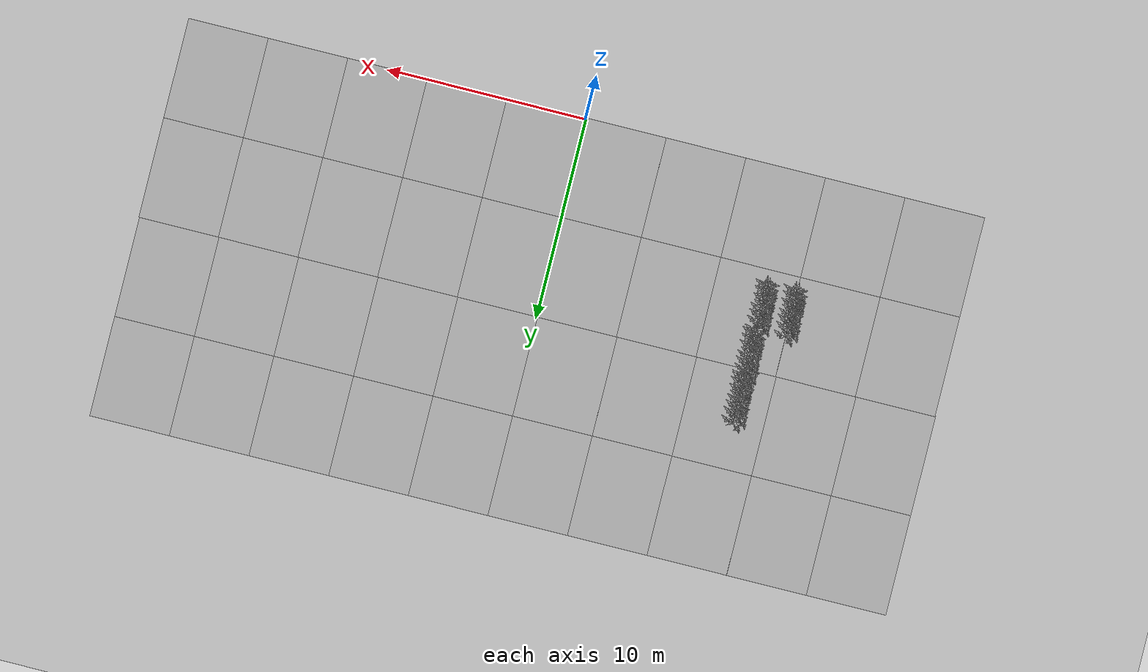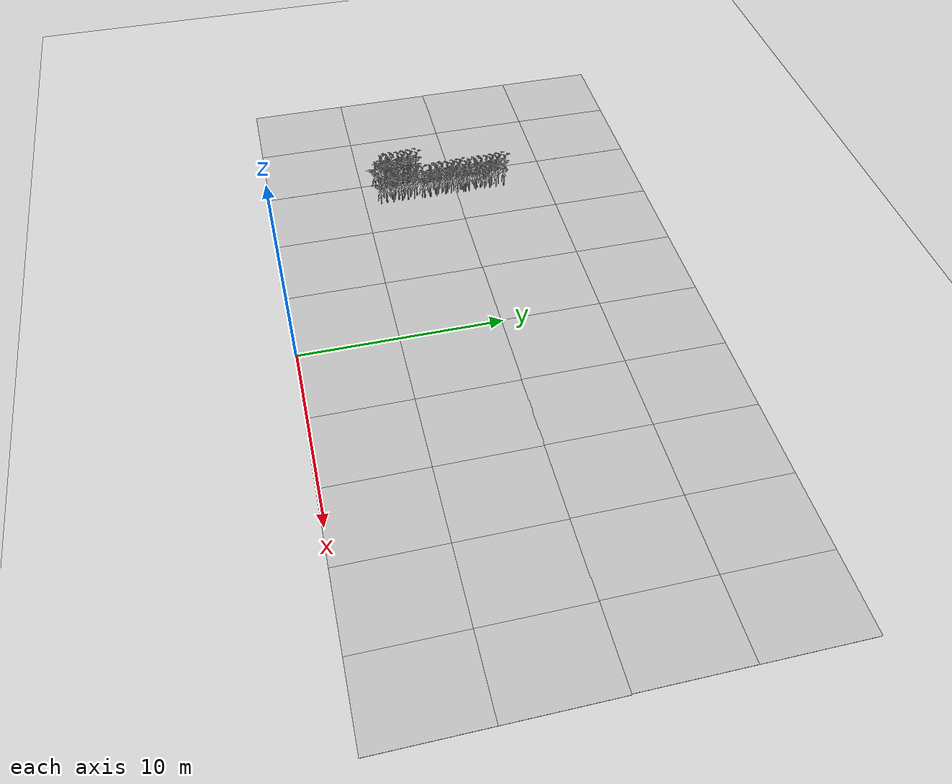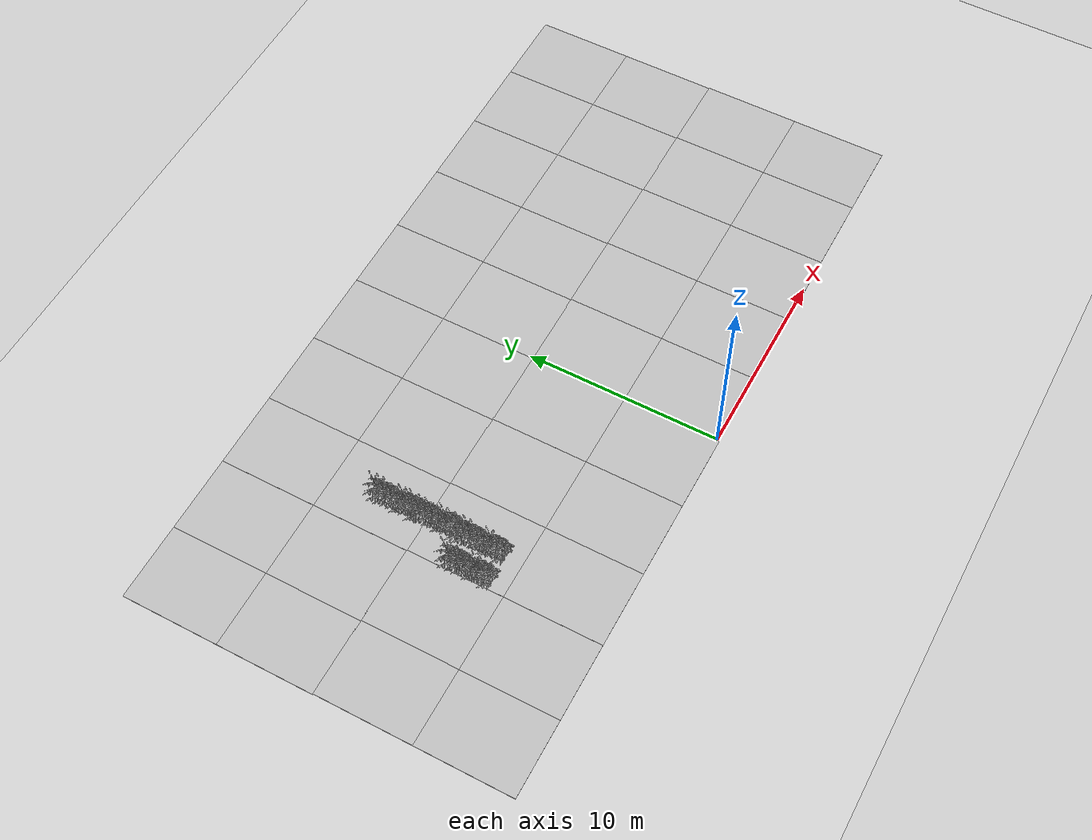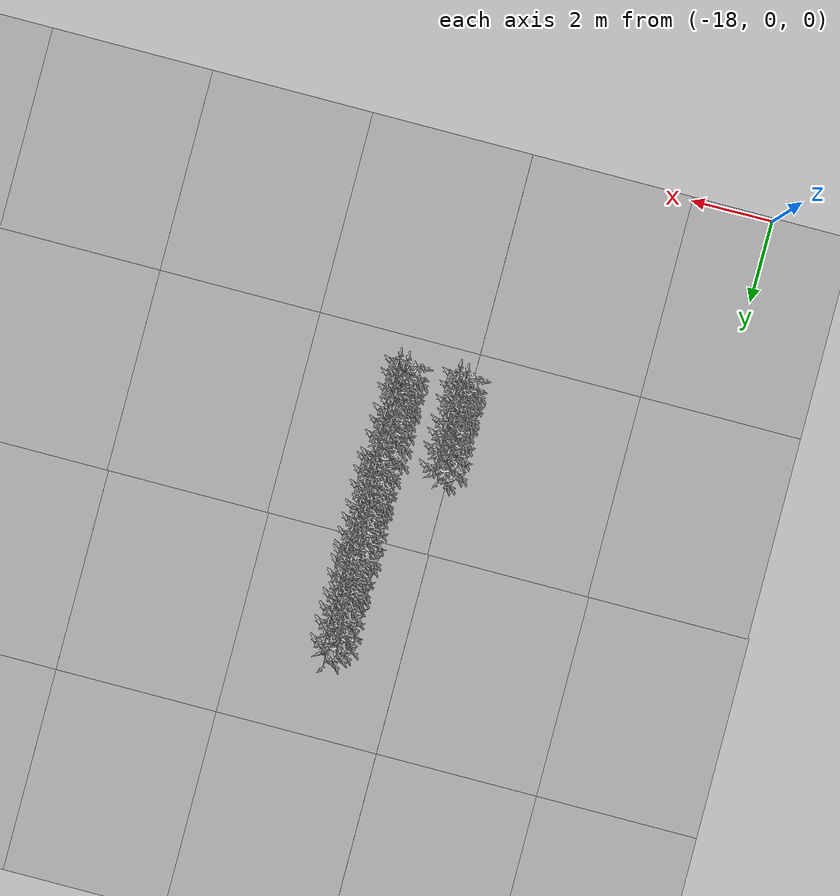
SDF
<sdf version="1.6">
 <world name="default">
  <model name="ground_plane">
   <static>1</static>
   <link name="link">
    <collision name="collision">
     <geometry><plane><normal>0 0 1</normal><size>100 100</size></plane></geometry>
     <surface>
      <contact><collide_bitmask>65535</collide_bitmask></contact>
      <friction><ode><mu>100</mu><mu2>50</mu2></ode></friction>
     </surface>
    </collision>
    <visual name="visual">
     <cast_shadows>0</cast_shadows>
     <geometry><plane><normal>0 0 1</normal><size>100 100</size></plane></geometry>
     <material>
      <script><uri>file://media/materials/scripts/gazebo.material</uri><name>Gazebo/Grey</name></script>
     </material>
    </visual>
   </link>
  </model>
  <model name="Ground_Soil_1">
   <model name="mud_box">
    <static>1</static>
    <link name="link">
     <collision name="collision"><geometry><box><size>8 10 0.02</size></box></geometry></collision>
     <visual name="visual_1">
      <pose>-2 2.5 0 0 -0 0</pose>
      <cast_shadows>0</cast_shadows>
      <geometry><box><size>4 5 0.02</size></box></geometry>
      <material>
       <script>
        <uri>model://mud_box/materials/scripts</uri>
        <uri>model://mud_box/materials/textures</uri>
        <name>vrc/mud</name>
       </script>
      </material>
     </visual>
     <visual name="visual_2">
      <pose>2 2.5 0 0 -0 0</pose>
      <cast_shadows>0</cast_shadows>
      <geometry><box><size>4 5 0.02</size></box></geometry>
      <material>
       <script>
        <uri>model://mud_box/materials/scripts</uri>
        <uri>model://mud_box/materials/textures</uri>
        <name>vrc/mud</name>
       </script>
      </material>
     </visual>
     <visual name="visual_3">
      <pose>2 -2.5 0 0 -0 0</pose>
      <cast_shadows>0</cast_shadows>
      <geometry><box><size>4 5 0.02</size></box></geometry>
      <material>
       <script>
        <uri>model://mud_box/materials/scripts</uri>
        <uri>model://mud_box/materials/textures</uri>
        <name>vrc/mud</name>
       </script>
      </material>
     </visual>
     <visual name="visual_4">
      <pose>-2 -2.5 0 0 -0 0</pose>
      <cast_shadows>0</cast_shadows>
      <geometry><box><size>4 5 0.02</size></box></geometry>
      <material>
       <script>
        <uri>model://mud_box/materials/scripts</uri>
        <uri>model://mud_box/materials/textures</uri>
        <name>vrc/mud</name>
       </script>
      </material>
     </visual>
    </link>
    <pose>-16.0013 0.000118 0 0 -0 0</pose>
   </model>
   <model name="mud_box_0">
    <static>1</static>
    <link name="link">
     <collision name="collision"><geometry><box><size>8 10 0.02</size></box></geometry></collision>
     <visual name="visual_1">
      <pose>-2 2.5 0 0 -0 0</pose>
      <cast_shadows>0</cast_shadows>
      <geometry><box><size>4 5 0.02</size></box></geometry>
      <material>
       <script>
        <uri>model://mud_box/materials/scripts</uri>
        <uri>model://mud_box/materials/textures</uri>
        <name>vrc/mud</name>
       </script>
      </material>
     </visual>
     <visual name="visual_2">
      <pose>2 2.5 0 0 -0 0</pose>
      <cast_shadows>0</cast_shadows>
      <geometry><box><size>4 5 0.02</size></box></geometry>
      <material>
       <script>
        <uri>model://mud_box/materials/scripts</uri>
        <uri>model://mud_box/materials/textures</uri>
        <name>vrc/mud</name>
       </script>
      </material>
     </visual>
     <visual name="visual_3">
      <pose>2 -2.5 0 0 -0 0</pose>
      <cast_shadows>0</cast_shadows>
      <geometry><box><size>4 5 0.02</size></box></geometry>
      <material>
       <script>
        <uri>model://mud_box/materials/scripts</uri>
        <uri>model://mud_box/materials/textures</uri>
        <name>vrc/mud</name>
       </script>
      </material>
     </visual>
     <visual name="visual_4">
      <pose>-2 -2.5 0 0 -0 0</pose>
      <cast_shadows>0</cast_shadows>
      <geometry><box><size>4 5 0.02</size></box></geometry>
      <material>
       <script>
        <uri>model://mud_box/materials/scripts</uri>
        <uri>model://mud_box/materials/textures</uri>
        <name>vrc/mud</name>
       </script>
      </material>
     </visual>
    </link>
    <pose>-7.99939 9.1e-05 0 0 -0 0</pose>
   </model>
   <model name="mud_box_1">
    <static>1</static>
    <link name="link">
     <collision name="collision"><geometry><box><size>8 10 0.02</size></box></geometry></collision>
     <visual name="visual_1">
      <pose>-2 2.5 0 0 -0 0</pose>
      <cast_shadows>0</cast_shadows>
      <geometry><box><size>4 5 0.02</size></box></geometry>
      <material>
       <script>
        <uri>model://mud_box/materials/scripts</uri>
        <uri>model://mud_box/materials/textures</uri>
        <name>vrc/mud</name>
       </script>
      </material>
     </visual>
     <visual name="visual_2">
      <pose>2 2.5 0 0 -0 0</pose>
      <cast_shadows>0</cast_shadows>
      <geometry><box><size>4 5 0.02</size></box></geometry>
      <material>
       <script>
        <uri>model://mud_box/materials/scripts</uri>
        <uri>model://mud_box/materials/textures</uri>
        <name>vrc/mud</name>
       </script>
      </material>
     </visual>
     <visual name="visual_3">
      <pose>2 -2.5 0 0 -0 0</pose>
      <cast_shadows>0</cast_shadows>
      <geometry><box><size>4 5 0.02</size></box></geometry>
      <material>
       <script>
        <uri>model://mud_box/materials/scripts</uri>
        <uri>model://mud_box/materials/textures</uri>
        <name>vrc/mud</name>
       </script>
      </material>
     </visual>
     <visual name="visual_4">
      <pose>-2 -2.5 0 0 -0 0</pose>
      <cast_shadows>0</cast_shadows>
      <geometry><box><size>4 5 0.02</size></box></geometry>
      <material>
       <script>
        <uri>model://mud_box/materials/scripts</uri>
        <uri>model://mud_box/materials/textures</uri>
        <name>vrc/mud</name>
       </script>
      </material>
     </visual>
    </link>
    <pose>0.000809 -0.000342 0 0 -0 0</pose>
   </model>
   <model name="mud_box_2">
    <static>1</static>
    <link name="link">
     <collision name="collision"><geometry><box><size>8 10 0.02</size></box></geometry></collision>
     <visual name="visual_1">
      <pose>-2 2.5 0 0 -0 0</pose>
      <cast_shadows>0</cast_shadows>
      <geometry><box><size>4 5 0.02</size></box></geometry>
      <material>
       <script>
        <uri>model://mud_box/materials/scripts</uri>
        <uri>model://mud_box/materials/textures</uri>
        <name>vrc/mud</name>
       </script>
      </material>
     </visual>
     <visual name="visual_2">
      <pose>2 2.5 0 0 -0 0</pose>
      <cast_shadows>0</cast_shadows>
      <geometry><box><size>4 5 0.02</size></box></geometry>
      <material>
       <script>
        <uri>model://mud_box/materials/scripts</uri>
        <uri>model://mud_box/materials/textures</uri>
        <name>vrc/mud</name>
       </script>
      </material>
     </visual>
     <visual name="visual_3">
      <pose>2 -2.5 0 0 -0 0</pose>
      <cast_shadows>0</cast_shadows>
      <geometry><box><size>4 5 0.02</size></box></geometry>
      <material>
       <script>
        <uri>model://mud_box/materials/scripts</uri>
        <uri>model://mud_box/materials/textures</uri>
        <name>vrc/mud</name>
       </script>
      </material>
     </visual>
     <visual name="visual_4">
      <pose>-2 -2.5 0 0 -0 0</pose>
      <cast_shadows>0</cast_shadows>
      <geometry><box><size>4 5 0.02</size></box></geometry>
      <material>
       <script>
        <uri>model://mud_box/materials/scripts</uri>
        <uri>model://mud_box/materials/textures</uri>
        <name>vrc/mud</name>
       </script>
      </material>
     </visual>
    </link>
    <pose>8.00089 -0.000148 0 0 -0 0</pose>
   </model>
   <model name="mud_box_3">
    <static>1</static>
    <link name="link">
     <collision name="collision"><geometry><box><size>8 10 0.02</size></box></geometry></collision>
     <visual name="visual_1">
      <pose>-2 2.5 0 0 -0 0</pose>
      <cast_shadows>0</cast_shadows>
      <geometry><box><size>4 5 0.02</size></box></geometry>
      <material>
       <script>
        <uri>model://mud_box/materials/scripts</uri>
        <uri>model://mud_box/materials/textures</uri>
        <name>vrc/mud</name>
       </script>
      </material>
     </visual>
     <visual name="visual_2">
      <pose>2 2.5 0 0 -0 0</pose>
      <cast_shadows>0</cast_shadows>
      <geometry><box><size>4 5 0.02</size></box></geometry>
      <material>
       <script>
        <uri>model://mud_box/materials/scripts</uri>
        <uri>model://mud_box/materials/textures</uri>
        <name>vrc/mud</name>
       </script>
      </material>
     </visual>
     <visual name="visual_3">
      <pose>2 -2.5 0 0 -0 0</pose>
      <cast_shadows>0</cast_shadows>
      <geometry><box><size>4 5 0.02</size></box></geometry>
      <material>
       <script>
        <uri>model://mud_box/materials/scripts</uri>
        <uri>model://mud_box/materials/textures</uri>
        <name>vrc/mud</name>
       </script>
      </material>
     </visual>
     <visual name="visual_4">
      <pose>-2 -2.5 0 0 -0 0</pose>
      <cast_shadows>0</cast_shadows>
      <geometry><box><size>4 5 0.02</size></box></geometry>
      <material>
       <script>
        <uri>model://mud_box/materials/scripts</uri>
        <uri>model://mud_box/materials/textures</uri>
        <name>vrc/mud</name>
       </script>
      </material>
     </visual>
    </link>
    <pose>15.9991 0.000313 0 0 -0 0</pose>
   </model>
   <static>0</static>
   <pose>-0.0126 4.89814 0 0 -0 0</pose>
  </model>
  <model name="Ground_Soil_2">
   <model name="mud_box">
    <static>1</static>
    <link name="link">
     <collision name="collision"><geometry><box><size>8 10 0.02</size></box></geometry></collision>
     <visual name="visual_1">
      <pose>-2 2.5 0 0 -0 0</pose>
      <cast_shadows>0</cast_shadows>
      <geometry><box><size>4 5 0.02</size></box></geometry>
      <material>
       <script>
        <uri>model://mud_box/materials/scripts</uri>
        <uri>model://mud_box/materials/textures</uri>
        <name>vrc/mud</name>
       </script>
      </material>
     </visual>
     <visual name="visual_2">
      <pose>2 2.5 0 0 -0 0</pose>
      <cast_shadows>0</cast_shadows>
      <geometry><box><size>4 5 0.02</size></box></geometry>
      <material>
       <script>
        <uri>model://mud_box/materials/scripts</uri>
        <uri>model://mud_box/materials/textures</uri>
        <name>vrc/mud</name>
       </script>
      </material>
     </visual>
     <visual name="visual_3">
      <pose>2 -2.5 0 0 -0 0</pose>
      <cast_shadows>0</cast_shadows>
      <geometry><box><size>4 5 0.02</size></box></geometry>
      <material>
       <script>
        <uri>model://mud_box/materials/scripts</uri>
        <uri>model://mud_box/materials/textures</uri>
        <name>vrc/mud</name>
       </script>
      </material>
     </visual>
     <visual name="visual_4">
      <pose>-2 -2.5 0 0 -0 0</pose>
      <cast_shadows>0</cast_shadows>
      <geometry><box><size>4 5 0.02</size></box></geometry>
      <material>
       <script>
        <uri>model://mud_box/materials/scripts</uri>
        <uri>model://mud_box/materials/textures</uri>
        <name>vrc/mud</name>
       </script>
      </material>
     </visual>
    </link>
    <pose>-16.0013 0.000118 0 0 -0 0</pose>
   </model>
   <model name="mud_box_0">
    <static>1</static>
    <link name="link">
     <collision name="collision"><geometry><box><size>8 10 0.02</size></box></geometry></collision>
     <visual name="visual_1">
      <pose>-2 2.5 0 0 -0 0</pose>
      <cast_shadows>0</cast_shadows>
      <geometry><box><size>4 5 0.02</size></box></geometry>
      <material>
       <script>
        <uri>model://mud_box/materials/scripts</uri>
        <uri>model://mud_box/materials/textures</uri>
        <name>vrc/mud</name>
       </script>
      </material>
     </visual>
     <visual name="visual_2">
      <pose>2 2.5 0 0 -0 0</pose>
      <cast_shadows>0</cast_shadows>
      <geometry><box><size>4 5 0.02</size></box></geometry>
      <material>
       <script>
        <uri>model://mud_box/materials/scripts</uri>
        <uri>model://mud_box/materials/textures</uri>
        <name>vrc/mud</name>
       </script>
      </material>
     </visual>
     <visual name="visual_3">
      <pose>2 -2.5 0 0 -0 0</pose>
      <cast_shadows>0</cast_shadows>
      <geometry><box><size>4 5 0.02</size></box></geometry>
      <material>
       <script>
        <uri>model://mud_box/materials/scripts</uri>
        <uri>model://mud_box/materials/textures</uri>
        <name>vrc/mud</name>
       </script>
      </material>
     </visual>
     <visual name="visual_4">
      <pose>-2 -2.5 0 0 -0 0</pose>
      <cast_shadows>0</cast_shadows>
      <geometry><box><size>4 5 0.02</size></box></geometry>
      <material>
       <script>
        <uri>model://mud_box/materials/scripts</uri>
        <uri>model://mud_box/materials/textures</uri>
        <name>vrc/mud</name>
       </script>
      </material>
     </visual>
    </link>
    <pose>-7.99939 9.1e-05 0 0 -0 0</pose>
   </model>
   <model name="mud_box_1">
    <static>1</static>
    <link name="link">
     <collision name="collision"><geometry><box><size>8 10 0.02</size></box></geometry></collision>
     <visual name="visual_1">
      <pose>-2 2.5 0 0 -0 0</pose>
      <cast_shadows>0</cast_shadows>
      <geometry><box><size>4 5 0.02</size></box></geometry>
      <material>
       <script>
        <uri>model://mud_box/materials/scripts</uri>
        <uri>model://mud_box/materials/textures</uri>
        <name>vrc/mud</name>
       </script>
      </material>
     </visual>
     <visual name="visual_2">
      <pose>2 2.5 0 0 -0 0</pose>
      <cast_shadows>0</cast_shadows>
      <geometry><box><size>4 5 0.02</size></box></geometry>
      <material>
       <script>
        <uri>model://mud_box/materials/scripts</uri>
        <uri>model://mud_box/materials/textures</uri>
        <name>vrc/mud</name>
       </script>
      </material>
     </visual>
     <visual name="visual_3">
      <pose>2 -2.5 0 0 -0 0</pose>
      <cast_shadows>0</cast_shadows>
      <geometry><box><size>4 5 0.02</size></box></geometry>
      <material>
       <script>
        <uri>model://mud_box/materials/scripts</uri>
        <uri>model://mud_box/materials/textures</uri>
        <name>vrc/mud</name>
       </script>
      </material>
     </visual>
     <visual name="visual_4">
      <pose>-2 -2.5 0 0 -0 0</pose>
      <cast_shadows>0</cast_shadows>
      <geometry><box><size>4 5 0.02</size></box></geometry>
      <material>
       <script>
        <uri>model://mud_box/materials/scripts</uri>
        <uri>model://mud_box/materials/textures</uri>
        <name>vrc/mud</name>
       </script>
      </material>
     </visual>
    </link>
    <pose>0.000809 -0.000342 0 0 -0 0</pose>
   </model>
   <model name="mud_box_2">
    <static>1</static>
    <link name="link">
     <collision name="collision"><geometry><box><size>8 10 0.02</size></box></geometry></collision>
     <visual name="visual_1">
      <pose>-2 2.5 0 0 -0 0</pose>
      <cast_shadows>0</cast_shadows>
      <geometry><box><size>4 5 0.02</size></box></geometry>
      <material>
       <script>
        <uri>model://mud_box/materials/scripts</uri>
        <uri>model://mud_box/materials/textures</uri>
        <name>vrc/mud</name>
       </script>
      </material>
     </visual>
     <visual name="visual_2">
      <pose>2 2.5 0 0 -0 0</pose>
      <cast_shadows>0</cast_shadows>
      <geometry><box><size>4 5 0.02</size></box></geometry>
      <material>
       <script>
        <uri>model://mud_box/materials/scripts</uri>
        <uri>model://mud_box/materials/textures</uri>
        <name>vrc/mud</name>
       </script>
      </material>
     </visual>
     <visual name="visual_3">
      <pose>2 -2.5 0 0 -0 0</pose>
      <cast_shadows>0</cast_shadows>
      <geometry><box><size>4 5 0.02</size></box></geometry>
      <material>
       <script>
        <uri>model://mud_box/materials/scripts</uri>
        <uri>model://mud_box/materials/textures</uri>
        <name>vrc/mud</name>
       </script>
      </material>
     </visual>
     <visual name="visual_4">
      <pose>-2 -2.5 0 0 -0 0</pose>
      <cast_shadows>0</cast_shadows>
      <geometry><box><size>4 5 0.02</size></box></geometry>
      <material>
       <script>
        <uri>model://mud_box/materials/scripts</uri>
        <uri>model://mud_box/materials/textures</uri>
        <name>vrc/mud</name>
       </script>
      </material>
     </visual>
    </link>
    <pose>8.00089 -0.000148 0 0 -0 0</pose>
   </model>
   <model name="mud_box_3">
    <static>1</static>
    <link name="link">
     <collision name="collision"><geometry><box><size>8 10 0.02</size></box></geometry></collision>
     <visual name="visual_1">
      <pose>-2 2.5 0 0 -0 0</pose>
      <cast_shadows>0</cast_shadows>
      <geometry><box><size>4 5 0.02</size></box></geometry>
      <material>
       <script>
        <uri>model://mud_box/materials/scripts</uri>
        <uri>model://mud_box/materials/textures</uri>
        <name>vrc/mud</name>
       </script>
      </material>
     </visual>
     <visual name="visual_2">
      <pose>2 2.5 0 0 -0 0</pose>
      <cast_shadows>0</cast_shadows>
      <geometry><box><size>4 5 0.02</size></box></geometry>
      <material>
       <script>
        <uri>model://mud_box/materials/scripts</uri>
        <uri>model://mud_box/materials/textures</uri>
        <name>vrc/mud</name>
       </script>
      </material>
     </visual>
     <visual name="visual_3">
      <pose>2 -2.5 0 0 -0 0</pose>
      <cast_shadows>0</cast_shadows>
      <geometry><box><size>4 5 0.02</size></box></geometry>
      <material>
       <script>
        <uri>model://mud_box/materials/scripts</uri>
        <uri>model://mud_box/materials/textures</uri>
        <name>vrc/mud</name>
       </script>
      </material>
     </visual>
     <visual name="visual_4">
      <pose>-2 -2.5 0 0 -0 0</pose>
      <cast_shadows>0</cast_shadows>
      <geometry><box><size>4 5 0.02</size></box></geometry>
      <material>
       <script>
        <uri>model://mud_box/materials/scripts</uri>
        <uri>model://mud_box/materials/textures</uri>
        <name>vrc/mud</name>
       </script>
      </material>
     </visual>
    </link>
    <pose>15.9991 0.000313 0 0 -0 0</pose>
   </model>
   <static>0</static>
   <pose>-0.0462 14.8693 0 0 -0 0</pose>
  </model>
  <model name="Middle_Plant_48">
   <model name="tomato_plant_big">
    <static>1</static>
    <link name="link">
     <collision name="collision">
      <geometry>
       <mesh><scale>5e-06 5e-06 6e-06</scale><uri>model://tomato_plant_big/meshes/tomato-plant.dae</uri></mesh>
      </geometry>
     </collision>
     <visual name="visual">
      <geometry>
       <mesh><scale>5e-06 5e-06 7e-06</scale><uri>model://tomato_plant_big/meshes/tomato-plant.dae</uri></mesh>
      </geometry>
     </visual>
    </link>
    <pose>0.085326 1.23023 0 0 -0 0</pose>
   </model>
   <model name="tomato_plant_big_0">
    <static>1</static>
    <link name="link">
     <collision name="collision">
      <geometry>
       <mesh><scale>5e-06 5e-06 6e-06</scale><uri>model://tomato_plant_big/meshes/tomato-plant.dae</uri></mesh>
      </geometry>
     </collision>
     <visual name="visual">
      <geometry>
       <mesh><scale>5e-06 5e-06 7e-06</scale><uri>model://tomato_plant_big/meshes/tomato-plant.dae</uri></mesh>
      </geometry>
     </visual>
    </link>
    <pose>-0.133881 0.970183 0 0 -0 0</pose>
   </model>
   <model name="tomato_plant_big_1">
    <static>1</static>
    <link name="link">
     <collision name="collision">
      <geometry>
       <mesh><scale>5e-06 5e-06 6e-06</scale><uri>model://tomato_plant_big/meshes/tomato-plant.dae</uri></mesh>
      </geometry>
     </collision>
     <visual name="visual">
      <geometry>
       <mesh><scale>5e-06 5e-06 7e-06</scale><uri>model://tomato_plant_big/meshes/tomato-plant.dae</uri></mesh>
      </geometry>
     </visual>
    </link>
    <pose>0.091162 0.792381 0 0 -0 0</pose>
   </model>
   <model name="tomato_plant_big_2">
    <static>1</static>
    <link name="link">
     <collision name="collision">
      <geometry>
       <mesh><scale>5e-06 5e-06 6e-06</scale><uri>model://tomato_plant_big/meshes/tomato-plant.dae</uri></mesh>
      </geometry>
     </collision>
     <visual name="visual">
      <geometry>
       <mesh><scale>5e-06 5e-06 7e-06</scale><uri>model://tomato_plant_big/meshes/tomato-plant.dae</uri></mesh>
      </geometry>
     </visual>
    </link>
    <pose>-0.099228 0.602587 0 0 -0 0</pose>
   </model>
   <model name="tomato_plant_big_3">
    <static>1</static>
    <link name="link">
     <collision name="collision">
      <geometry>
       <mesh><scale>5e-06 5e-06 6e-06</scale><uri>model://tomato_plant_big/meshes/tomato-plant.dae</uri></mesh>
      </geometry>
     </collision>
     <visual name="visual">
      <geometry>
       <mesh><scale>5e-06 5e-06 7e-06</scale><uri>model://tomato_plant_big/meshes/tomato-plant.dae</uri></mesh>
      </geometry>
     </visual>
    </link>
    <pose>0.083199 0.447645 0 0 -0 0</pose>
   </model>
   <model name="tomato_plant_big_4">
    <static>1</static>
    <link name="link">
     <collision name="collision">
      <geometry>
       <mesh><scale>5e-06 5e-06 6e-06</scale><uri>model://tomato_plant_big/meshes/tomato-plant.dae</uri></mesh>
      </geometry>
     </collision>
     <visual name="visual">
      <geometry>
       <mesh><scale>5e-06 5e-06 7e-06</scale><uri>model://tomato_plant_big/meshes/tomato-plant.dae</uri></mesh>
      </geometry>
     </visual>
    </link>
    <pose>-0.079499 0.263486 0 0 -0 0</pose>
   </model>
   <model name="tomato_plant_big_5">
    <static>1</static>
    <link name="link">
     <collision name="collision">
      <geometry>
       <mesh><scale>5e-06 5e-06 6e-06</scale><uri>model://tomato_plant_big/meshes/tomato-plant.dae</uri></mesh>
      </geometry>
     </collision>
     <visual name="visual">
      <geometry>
       <mesh><scale>5e-06 5e-06 7e-06</scale><uri>model://tomato_plant_big/meshes/tomato-plant.dae</uri></mesh>
      </geometry>
     </visual>
    </link>
    <pose>-0.033274 -0.040578 0 0 -0 0</pose>
   </model>
   <model name="tomato_plant_big_6">
    <static>1</static>
    <link name="link">
     <collision name="collision">
      <geometry>
       <mesh><scale>5e-06 5e-06 6e-06</scale><uri>model://tomato_plant_big/meshes/tomato-plant.dae</uri></mesh>
      </geometry>
     </collision>
     <visual name="visual">
      <geometry>
       <mesh><scale>5e-06 5e-06 7e-06</scale><uri>model://tomato_plant_big/meshes/tomato-plant.dae</uri></mesh>
      </geometry>
     </visual>
    </link>
    <pose>-0.07669 -0.382406 0 0 -0 0</pose>
   </model>
   <model name="tomato_plant_big_7">
    <static>1</static>
    <link name="link">
     <collision name="collision">
      <geometry>
       <mesh><scale>5e-06 5e-06 6e-06</scale><uri>model://tomato_plant_big/meshes/tomato-plant.dae</uri></mesh>
      </geometry>
     </collision>
     <visual name="visual">
      <geometry>
       <mesh><scale>5e-06 5e-06 7e-06</scale><uri>model://tomato_plant_big/meshes/tomato-plant.dae</uri></mesh>
      </geometry>
     </visual>
    </link>
    <pose>0.092388 -0.348189 0 0 -0 0</pose>
   </model>
   <model name="tomato_plant_big_8">
    <static>1</static>
    <link name="link">
     <collision name="collision">
      <geometry>
       <mesh><scale>5e-06 5e-06 6e-06</scale><uri>model://tomato_plant_big/meshes/tomato-plant.dae</uri></mesh>
      </geometry>
     </collision>
     <visual name="visual">
      <geometry>
       <mesh><scale>5e-06 5e-06 7e-06</scale><uri>model://tomato_plant_big/meshes/tomato-plant.dae</uri></mesh>
      </geometry>
     </visual>
    </link>
    <pose>0.099522 -0.697525 0 0 -0 0</pose>
   </model>
   <model name="tomato_plant_big_9">
    <static>1</static>
    <link name="link">
     <collision name="collision">
      <geometry>
       <mesh><scale>5e-06 5e-06 6e-06</scale><uri>model://tomato_plant_big/meshes/tomato-plant.dae</uri></mesh>
      </geometry>
     </collision>
     <visual name="visual">
      <geometry>
       <mesh><scale>5e-06 5e-06 7e-06</scale><uri>model://tomato_plant_big/meshes/tomato-plant.dae</uri></mesh>
      </geometry>
     </visual>
    </link>
    <pose>-0.050449 -0.712772 0 0 -0 0</pose>
   </model>
   <model name="tomato_plant_medium">
    <static>1</static>
    <link name="link">
     <collision name="collision">
      <geometry>
       <mesh><scale>5e-06 5e-06 6e-06</scale><uri>model://tomato_plant_medium/meshes/tomato-plant.dae</uri></mesh>
      </geometry>
     </collision>
     <visual name="visual">
      <geometry>
       <mesh><scale>5e-06 5e-06 6e-06</scale><uri>model://tomato_plant_medium/meshes/tomato-plant.dae</uri></mesh>
      </geometry>
     </visual>
    </link>
    <pose>0.078434 0.139842 0 0 -0 0</pose>
   </model>
   <model name="tomato_plant_medium_0">
    <static>1</static>
    <link name="link">
     <collision name="collision">
      <geometry>
       <mesh><scale>5e-06 5e-06 6e-06</scale><uri>model://tomato_plant_medium/meshes/tomato-plant.dae</uri></mesh>
      </geometry>
     </collision>
     <visual name="visual">
      <geometry>
       <mesh><scale>5e-06 5e-06 6e-06</scale><uri>model://tomato_plant_medium/meshes/tomato-plant.dae</uri></mesh>
      </geometry>
     </visual>
    </link>
    <pose>-0.079755 -0.244483 0 0 -0 0</pose>
   </model>
   <model name="tomato_plant_medium_1">
    <static>1</static>
    <link name="link">
     <collision name="collision">
      <geometry>
       <mesh><scale>5e-06 5e-06 6e-06</scale><uri>model://tomato_plant_medium/meshes/tomato-plant.dae</uri></mesh>
      </geometry>
     </collision>
     <visual name="visual">
      <geometry>
       <mesh><scale>5e-06 5e-06 6e-06</scale><uri>model://tomato_plant_medium/meshes/tomato-plant.dae</uri></mesh>
      </geometry>
     </visual>
    </link>
    <pose>0.106744 -1.01815 0 0 -0 0</pose>
   </model>
   <model name="tomato_plant_small">
    <static>1</static>
    <link name="link">
     <collision name="collision">
      <geometry>
       <mesh><scale>5e-06 5e-06 5e-06</scale><uri>model://tomato_plant_small/meshes/tomato-plant.dae</uri></mesh>
      </geometry>
     </collision>
     <visual name="visual">
      <geometry>
       <mesh><scale>5e-06 5e-06 5e-06</scale><uri>model://tomato_plant_small/meshes/tomato-plant.dae</uri></mesh>
      </geometry>
     </visual>
    </link>
    <pose>-0.083979 -1.00222 0 0 -0 0</pose>
   </model>
   <static>0</static>
   <pose>-11.82 6.6934 0 0 -0 0</pose>
  </model>
  <model name="Middle_Plant_49">
   <model name="tomato_plant_big">
    <static>1</static>
    <link name="link">
     <collision name="collision">
      <geometry>
       <mesh><scale>5e-06 5e-06 6e-06</scale><uri>model://tomato_plant_big/meshes/tomato-plant.dae</uri></mesh>
      </geometry>
     </collision>
     <visual name="visual">
      <geometry>
       <mesh><scale>5e-06 5e-06 7e-06</scale><uri>model://tomato_plant_big/meshes/tomato-plant.dae</uri></mesh>
      </geometry>
     </visual>
    </link>
    <pose>0.085326 1.23023 0 0 -0 0</pose>
   </model>
   <model name="tomato_plant_big_0">
    <static>1</static>
    <link name="link">
     <collision name="collision">
      <geometry>
       <mesh><scale>5e-06 5e-06 6e-06</scale><uri>model://tomato_plant_big/meshes/tomato-plant.dae</uri></mesh>
      </geometry>
     </collision>
     <visual name="visual">
      <geometry>
       <mesh><scale>5e-06 5e-06 7e-06</scale><uri>model://tomato_plant_big/meshes/tomato-plant.dae</uri></mesh>
      </geometry>
     </visual>
    </link>
    <pose>-0.133881 0.970183 0 0 -0 0</pose>
   </model>
   <model name="tomato_plant_big_1">
    <static>1</static>
    <link name="link">
     <collision name="collision">
      <geometry>
       <mesh><scale>5e-06 5e-06 6e-06</scale><uri>model://tomato_plant_big/meshes/tomato-plant.dae</uri></mesh>
      </geometry>
     </collision>
     <visual name="visual">
      <geometry>
       <mesh><scale>5e-06 5e-06 7e-06</scale><uri>model://tomato_plant_big/meshes/tomato-plant.dae</uri></mesh>
      </geometry>
     </visual>
    </link>
    <pose>0.091162 0.792381 0 0 -0 0</pose>
   </model>
   <model name="tomato_plant_big_2">
    <static>1</static>
    <link name="link">
     <collision name="collision">
      <geometry>
       <mesh><scale>5e-06 5e-06 6e-06</scale><uri>model://tomato_plant_big/meshes/tomato-plant.dae</uri></mesh>
      </geometry>
     </collision>
     <visual name="visual">
      <geometry>
       <mesh><scale>5e-06 5e-06 7e-06</scale><uri>model://tomato_plant_big/meshes/tomato-plant.dae</uri></mesh>
      </geometry>
     </visual>
    </link>
    <pose>-0.099228 0.602587 0 0 -0 0</pose>
   </model>
   <model name="tomato_plant_big_3">
    <static>1</static>
    <link name="link">
     <collision name="collision">
      <geometry>
       <mesh><scale>5e-06 5e-06 6e-06</scale><uri>model://tomato_plant_big/meshes/tomato-plant.dae</uri></mesh>
      </geometry>
     </collision>
     <visual name="visual">
      <geometry>
       <mesh><scale>5e-06 5e-06 7e-06</scale><uri>model://tomato_plant_big/meshes/tomato-plant.dae</uri></mesh>
      </geometry>
     </visual>
    </link>
    <pose>0.083199 0.447645 0 0 -0 0</pose>
   </model>
   <model name="tomato_plant_big_4">
    <static>1</static>
    <link name="link">
     <collision name="collision">
      <geometry>
       <mesh><scale>5e-06 5e-06 6e-06</scale><uri>model://tomato_plant_big/meshes/tomato-plant.dae</uri></mesh>
      </geometry>
     </collision>
     <visual name="visual">
      <geometry>
       <mesh><scale>5e-06 5e-06 7e-06</scale><uri>model://tomato_plant_big/meshes/tomato-plant.dae</uri></mesh>
      </geometry>
     </visual>
    </link>
    <pose>-0.079499 0.263486 0 0 -0 0</pose>
   </model>
   <model name="tomato_plant_big_5">
    <static>1</static>
    <link name="link">
     <collision name="collision">
      <geometry>
       <mesh><scale>5e-06 5e-06 6e-06</scale><uri>model://tomato_plant_big/meshes/tomato-plant.dae</uri></mesh>
      </geometry>
     </collision>
     <visual name="visual">
      <geometry>
       <mesh><scale>5e-06 5e-06 7e-06</scale><uri>model://tomato_plant_big/meshes/tomato-plant.dae</uri></mesh>
      </geometry>
     </visual>
    </link>
    <pose>-0.033274 -0.040578 0 0 -0 0</pose>
   </model>
   <model name="tomato_plant_big_6">
    <static>1</static>
    <link name="link">
     <collision name="collision">
      <geometry>
       <mesh><scale>5e-06 5e-06 6e-06</scale><uri>model://tomato_plant_big/meshes/tomato-plant.dae</uri></mesh>
      </geometry>
     </collision>
     <visual name="visual">
      <geometry>
       <mesh><scale>5e-06 5e-06 7e-06</scale><uri>model://tomato_plant_big/meshes/tomato-plant.dae</uri></mesh>
      </geometry>
     </visual>
    </link>
    <pose>-0.07669 -0.382406 0 0 -0 0</pose>
   </model>
   <model name="tomato_plant_big_7">
    <static>1</static>
    <link name="link">
     <collision name="collision">
      <geometry>
       <mesh><scale>5e-06 5e-06 6e-06</scale><uri>model://tomato_plant_big/meshes/tomato-plant.dae</uri></mesh>
      </geometry>
     </collision>
     <visual name="visual">
      <geometry>
       <mesh><scale>5e-06 5e-06 7e-06</scale><uri>model://tomato_plant_big/meshes/tomato-plant.dae</uri></mesh>
      </geometry>
     </visual>
    </link>
    <pose>0.092388 -0.348189 0 0 -0 0</pose>
   </model>
   <model name="tomato_plant_big_8">
    <static>1</static>
    <link name="link">
     <collision name="collision">
      <geometry>
       <mesh><scale>5e-06 5e-06 6e-06</scale><uri>model://tomato_plant_big/meshes/tomato-plant.dae</uri></mesh>
      </geometry>
     </collision>
     <visual name="visual">
      <geometry>
       <mesh><scale>5e-06 5e-06 7e-06</scale><uri>model://tomato_plant_big/meshes/tomato-plant.dae</uri></mesh>
      </geometry>
     </visual>
    </link>
    <pose>0.099522 -0.697525 0 0 -0 0</pose>
   </model>
   <model name="tomato_plant_big_9">
    <static>1</static>
    <link name="link">
     <collision name="collision">
      <geometry>
       <mesh><scale>5e-06 5e-06 6e-06</scale><uri>model://tomato_plant_big/meshes/tomato-plant.dae</uri></mesh>
      </geometry>
     </collision>
     <visual name="visual">
      <geometry>
       <mesh><scale>5e-06 5e-06 7e-06</scale><uri>model://tomato_plant_big/meshes/tomato-plant.dae</uri></mesh>
      </geometry>
     </visual>
    </link>
    <pose>-0.050449 -0.712772 0 0 -0 0</pose>
   </model>
   <model name="tomato_plant_medium">
    <static>1</static>
    <link name="link">
     <collision name="collision">
      <geometry>
       <mesh><scale>5e-06 5e-06 6e-06</scale><uri>model://tomato_plant_medium/meshes/tomato-plant.dae</uri></mesh>
      </geometry>
     </collision>
     <visual name="visual">
      <geometry>
       <mesh><scale>5e-06 5e-06 6e-06</scale><uri>model://tomato_plant_medium/meshes/tomato-plant.dae</uri></mesh>
      </geometry>
     </visual>
    </link>
    <pose>0.078434 0.139842 0 0 -0 0</pose>
   </model>
   <model name="tomato_plant_medium_0">
    <static>1</static>
    <link name="link">
     <collision name="collision">
      <geometry>
       <mesh><scale>5e-06 5e-06 6e-06</scale><uri>model://tomato_plant_medium/meshes/tomato-plant.dae</uri></mesh>
      </geometry>
     </collision>
     <visual name="visual">
      <geometry>
       <mesh><scale>5e-06 5e-06 6e-06</scale><uri>model://tomato_plant_medium/meshes/tomato-plant.dae</uri></mesh>
      </geometry>
     </visual>
    </link>
    <pose>-0.079755 -0.244483 0 0 -0 0</pose>
   </model>
   <model name="tomato_plant_medium_1">
    <static>1</static>
    <link name="link">
     <collision name="collision">
      <geometry>
       <mesh><scale>5e-06 5e-06 6e-06</scale><uri>model://tomato_plant_medium/meshes/tomato-plant.dae</uri></mesh>
      </geometry>
     </collision>
     <visual name="visual">
      <geometry>
       <mesh><scale>5e-06 5e-06 6e-06</scale><uri>model://tomato_plant_medium/meshes/tomato-plant.dae</uri></mesh>
      </geometry>
     </visual>
    </link>
    <pose>0.106744 -1.01815 0 0 -0 0</pose>
   </model>
   <model name="tomato_plant_small">
    <static>1</static>
    <link name="link">
     <collision name="collision">
      <geometry>
       <mesh><scale>5e-06 5e-06 5e-06</scale><uri>model://tomato_plant_small/meshes/tomato-plant.dae</uri></mesh>
      </geometry>
     </collision>
     <visual name="visual">
      <geometry>
       <mesh><scale>5e-06 5e-06 5e-06</scale><uri>model://tomato_plant_small/meshes/tomato-plant.dae</uri></mesh>
      </geometry>
     </visual>
    </link>
    <pose>-0.083979 -1.00222 0 0 -0 0</pose>
   </model>
   <static>0</static>
   <pose>-10.4245 6.76778 0 0 -0 0</pose>
  </model>
  <model name="Middle_Plant_52">
   <model name="tomato_plant_big">
    <static>1</static>
    <link name="link">
     <collision name="collision">
      <geometry>
       <mesh><scale>5e-06 5e-06 6e-06</scale><uri>model://tomato_plant_big/meshes/tomato-plant.dae</uri></mesh>
      </geometry>
     </collision>
     <visual name="visual">
      <geometry>
       <mesh><scale>5e-06 5e-06 7e-06</scale><uri>model://tomato_plant_big/meshes/tomato-plant.dae</uri></mesh>
      </geometry>
     </visual>
    </link>
    <pose>0.085326 1.23023 0 0 -0 0</pose>
   </model>
   <model name="tomato_plant_big_0">
    <static>1</static>
    <link name="link">
     <collision name="collision">
      <geometry>
       <mesh><scale>5e-06 5e-06 6e-06</scale><uri>model://tomato_plant_big/meshes/tomato-plant.dae</uri></mesh>
      </geometry>
     </collision>
     <visual name="visual">
      <geometry>
       <mesh><scale>5e-06 5e-06 7e-06</scale><uri>model://tomato_plant_big/meshes/tomato-plant.dae</uri></mesh>
      </geometry>
     </visual>
    </link>
    <pose>-0.133881 0.970183 0 0 -0 0</pose>
   </model>
   <model name="tomato_plant_big_1">
    <static>1</static>
    <link name="link">
     <collision name="collision">
      <geometry>
       <mesh><scale>5e-06 5e-06 6e-06</scale><uri>model://tomato_plant_big/meshes/tomato-plant.dae</uri></mesh>
      </geometry>
     </collision>
     <visual name="visual">
      <geometry>
       <mesh><scale>5e-06 5e-06 7e-06</scale><uri>model://tomato_plant_big/meshes/tomato-plant.dae</uri></mesh>
      </geometry>
     </visual>
    </link>
    <pose>0.091162 0.792381 0 0 -0 0</pose>
   </model>
   <model name="tomato_plant_big_2">
    <static>1</static>
    <link name="link">
     <collision name="collision">
      <geometry>
       <mesh><scale>5e-06 5e-06 6e-06</scale><uri>model://tomato_plant_big/meshes/tomato-plant.dae</uri></mesh>
      </geometry>
     </collision>
     <visual name="visual">
      <geometry>
       <mesh><scale>5e-06 5e-06 7e-06</scale><uri>model://tomato_plant_big/meshes/tomato-plant.dae</uri></mesh>
      </geometry>
     </visual>
    </link>
    <pose>-0.099228 0.602587 0 0 -0 0</pose>
   </model>
   <model name="tomato_plant_big_3">
    <static>1</static>
    <link name="link">
     <collision name="collision">
      <geometry>
       <mesh><scale>5e-06 5e-06 6e-06</scale><uri>model://tomato_plant_big/meshes/tomato-plant.dae</uri></mesh>
      </geometry>
     </collision>
     <visual name="visual">
      <geometry>
       <mesh><scale>5e-06 5e-06 7e-06</scale><uri>model://tomato_plant_big/meshes/tomato-plant.dae</uri></mesh>
      </geometry>
     </visual>
    </link>
    <pose>0.083199 0.447645 0 0 -0 0</pose>
   </model>
   <model name="tomato_plant_big_4">
    <static>1</static>
    <link name="link">
     <collision name="collision">
      <geometry>
       <mesh><scale>5e-06 5e-06 6e-06</scale><uri>model://tomato_plant_big/meshes/tomato-plant.dae</uri></mesh>
      </geometry>
     </collision>
     <visual name="visual">
      <geometry>
       <mesh><scale>5e-06 5e-06 7e-06</scale><uri>model://tomato_plant_big/meshes/tomato-plant.dae</uri></mesh>
      </geometry>
     </visual>
    </link>
    <pose>-0.079499 0.263486 0 0 -0 0</pose>
   </model>
   <model name="tomato_plant_big_5">
    <static>1</static>
    <link name="link">
     <collision name="collision">
      <geometry>
       <mesh><scale>5e-06 5e-06 6e-06</scale><uri>model://tomato_plant_big/meshes/tomato-plant.dae</uri></mesh>
      </geometry>
     </collision>
     <visual name="visual">
      <geometry>
       <mesh><scale>5e-06 5e-06 7e-06</scale><uri>model://tomato_plant_big/meshes/tomato-plant.dae</uri></mesh>
      </geometry>
     </visual>
    </link>
    <pose>-0.033274 -0.040578 0 0 -0 0</pose>
   </model>
   <model name="tomato_plant_big_6">
    <static>1</static>
    <link name="link">
     <collision name="collision">
      <geometry>
       <mesh><scale>5e-06 5e-06 6e-06</scale><uri>model://tomato_plant_big/meshes/tomato-plant.dae</uri></mesh>
      </geometry>
     </collision>
     <visual name="visual">
      <geometry>
       <mesh><scale>5e-06 5e-06 7e-06</scale><uri>model://tomato_plant_big/meshes/tomato-plant.dae</uri></mesh>
      </geometry>
     </visual>
    </link>
    <pose>-0.07669 -0.382406 0 0 -0 0</pose>
   </model>
   <model name="tomato_plant_big_7">
    <static>1</static>
    <link name="link">
     <collision name="collision">
      <geometry>
       <mesh><scale>5e-06 5e-06 6e-06</scale><uri>model://tomato_plant_big/meshes/tomato-plant.dae</uri></mesh>
      </geometry>
     </collision>
     <visual name="visual">
      <geometry>
       <mesh><scale>5e-06 5e-06 7e-06</scale><uri>model://tomato_plant_big/meshes/tomato-plant.dae</uri></mesh>
      </geometry>
     </visual>
    </link>
    <pose>0.092388 -0.348189 0 0 -0 0</pose>
   </model>
   <model name="tomato_plant_big_8">
    <static>1</static>
    <link name="link">
     <collision name="collision">
      <geometry>
       <mesh><scale>5e-06 5e-06 6e-06</scale><uri>model://tomato_plant_big/meshes/tomato-plant.dae</uri></mesh>
      </geometry>
     </collision>
     <visual name="visual">
      <geometry>
       <mesh><scale>5e-06 5e-06 7e-06</scale><uri>model://tomato_plant_big/meshes/tomato-plant.dae</uri></mesh>
      </geometry>
     </visual>
    </link>
    <pose>0.099522 -0.697525 0 0 -0 0</pose>
   </model>
   <model name="tomato_plant_big_9">
    <static>1</static>
    <link name="link">
     <collision name="collision">
      <geometry>
       <mesh><scale>5e-06 5e-06 6e-06</scale><uri>model://tomato_plant_big/meshes/tomato-plant.dae</uri></mesh>
      </geometry>
     </collision>
     <visual name="visual">
      <geometry>
       <mesh><scale>5e-06 5e-06 7e-06</scale><uri>model://tomato_plant_big/meshes/tomato-plant.dae</uri></mesh>
      </geometry>
     </visual>
    </link>
    <pose>-0.050449 -0.712772 0 0 -0 0</pose>
   </model>
   <model name="tomato_plant_medium">
    <static>1</static>
    <link name="link">
     <collision name="collision">
      <geometry>
       <mesh><scale>5e-06 5e-06 6e-06</scale><uri>model://tomato_plant_medium/meshes/tomato-plant.dae</uri></mesh>
      </geometry>
     </collision>
     <visual name="visual">
      <geometry>
       <mesh><scale>5e-06 5e-06 6e-06</scale><uri>model://tomato_plant_medium/meshes/tomato-plant.dae</uri></mesh>
      </geometry>
     </visual>
    </link>
    <pose>0.078434 0.139842 0 0 -0 0</pose>
   </model>
   <model name="tomato_plant_medium_0">
    <static>1</static>
    <link name="link">
     <collision name="collision">
      <geometry>
       <mesh><scale>5e-06 5e-06 6e-06</scale><uri>model://tomato_plant_medium/meshes/tomato-plant.dae</uri></mesh>
      </geometry>
     </collision>
     <visual name="visual">
      <geometry>
       <mesh><scale>5e-06 5e-06 6e-06</scale><uri>model://tomato_plant_medium/meshes/tomato-plant.dae</uri></mesh>
      </geometry>
     </visual>
    </link>
    <pose>-0.079755 -0.244483 0 0 -0 0</pose>
   </model>
   <model name="tomato_plant_medium_1">
    <static>1</static>
    <link name="link">
     <collision name="collision">
      <geometry>
       <mesh><scale>5e-06 5e-06 6e-06</scale><uri>model://tomato_plant_medium/meshes/tomato-plant.dae</uri></mesh>
      </geometry>
     </collision>
     <visual name="visual">
      <geometry>
       <mesh><scale>5e-06 5e-06 6e-06</scale><uri>model://tomato_plant_medium/meshes/tomato-plant.dae</uri></mesh>
      </geometry>
     </visual>
    </link>
    <pose>0.106744 -1.01815 0 0 -0 0</pose>
   </model>
   <model name="tomato_plant_small">
    <static>1</static>
    <link name="link">
     <collision name="collision">
      <geometry>
       <mesh><scale>5e-06 5e-06 5e-06</scale><uri>model://tomato_plant_small/meshes/tomato-plant.dae</uri></mesh>
      </geometry>
     </collision>
     <visual name="visual">
      <geometry>
       <mesh><scale>5e-06 5e-06 5e-06</scale><uri>model://tomato_plant_small/meshes/tomato-plant.dae</uri></mesh>
      </geometry>
     </visual>
    </link>
    <pose>-0.083979 -1.00222 0 0 -0 0</pose>
   </model>
   <static>0</static>
   <pose>-10.382 9.14027 0 0 -0 0</pose>
  </model>
  <model name="Middle_Plant_53">
   <model name="tomato_plant_big">
    <static>1</static>
    <link name="link">
     <collision name="collision">
      <geometry>
       <mesh><scale>5e-06 5e-06 6e-06</scale><uri>model://tomato_plant_big/meshes/tomato-plant.dae</uri></mesh>
      </geometry>
     </collision>
     <visual name="visual">
      <geometry>
       <mesh><scale>5e-06 5e-06 7e-06</scale><uri>model://tomato_plant_big/meshes/tomato-plant.dae</uri></mesh>
      </geometry>
     </visual>
    </link>
    <pose>0.085326 1.23023 0 0 -0 0</pose>
   </model>
   <model name="tomato_plant_big_0">
    <static>1</static>
    <link name="link">
     <collision name="collision">
      <geometry>
       <mesh><scale>5e-06 5e-06 6e-06</scale><uri>model://tomato_plant_big/meshes/tomato-plant.dae</uri></mesh>
      </geometry>
     </collision>
     <visual name="visual">
      <geometry>
       <mesh><scale>5e-06 5e-06 7e-06</scale><uri>model://tomato_plant_big/meshes/tomato-plant.dae</uri></mesh>
      </geometry>
     </visual>
    </link>
    <pose>-0.133881 0.970183 0 0 -0 0</pose>
   </model>
   <model name="tomato_plant_big_1">
    <static>1</static>
    <link name="link">
     <collision name="collision">
      <geometry>
       <mesh><scale>5e-06 5e-06 6e-06</scale><uri>model://tomato_plant_big/meshes/tomato-plant.dae</uri></mesh>
      </geometry>
     </collision>
     <visual name="visual">
      <geometry>
       <mesh><scale>5e-06 5e-06 7e-06</scale><uri>model://tomato_plant_big/meshes/tomato-plant.dae</uri></mesh>
      </geometry>
     </visual>
    </link>
    <pose>0.091162 0.792381 0 0 -0 0</pose>
   </model>
   <model name="tomato_plant_big_2">
    <static>1</static>
    <link name="link">
     <collision name="collision">
      <geometry>
       <mesh><scale>5e-06 5e-06 6e-06</scale><uri>model://tomato_plant_big/meshes/tomato-plant.dae</uri></mesh>
      </geometry>
     </collision>
     <visual name="visual">
      <geometry>
       <mesh><scale>5e-06 5e-06 7e-06</scale><uri>model://tomato_plant_big/meshes/tomato-plant.dae</uri></mesh>
      </geometry>
     </visual>
    </link>
    <pose>-0.099228 0.602587 0 0 -0 0</pose>
   </model>
   <model name="tomato_plant_big_3">
    <static>1</static>
    <link name="link">
     <collision name="collision">
      <geometry>
       <mesh><scale>5e-06 5e-06 6e-06</scale><uri>model://tomato_plant_big/meshes/tomato-plant.dae</uri></mesh>
      </geometry>
     </collision>
     <visual name="visual">
      <geometry>
       <mesh><scale>5e-06 5e-06 7e-06</scale><uri>model://tomato_plant_big/meshes/tomato-plant.dae</uri></mesh>
      </geometry>
     </visual>
    </link>
    <pose>0.083199 0.447645 0 0 -0 0</pose>
   </model>
   <model name="tomato_plant_big_4">
    <static>1</static>
    <link name="link">
     <collision name="collision">
      <geometry>
       <mesh><scale>5e-06 5e-06 6e-06</scale><uri>model://tomato_plant_big/meshes/tomato-plant.dae</uri></mesh>
      </geometry>
     </collision>
     <visual name="visual">
      <geometry>
       <mesh><scale>5e-06 5e-06 7e-06</scale><uri>model://tomato_plant_big/meshes/tomato-plant.dae</uri></mesh>
      </geometry>
     </visual>
    </link>
    <pose>-0.079499 0.263486 0 0 -0 0</pose>
   </model>
   <model name="tomato_plant_big_5">
    <static>1</static>
    <link name="link">
     <collision name="collision">
      <geometry>
       <mesh><scale>5e-06 5e-06 6e-06</scale><uri>model://tomato_plant_big/meshes/tomato-plant.dae</uri></mesh>
      </geometry>
     </collision>
     <visual name="visual">
      <geometry>
       <mesh><scale>5e-06 5e-06 7e-06</scale><uri>model://tomato_plant_big/meshes/tomato-plant.dae</uri></mesh>
      </geometry>
     </visual>
    </link>
    <pose>-0.033274 -0.040578 0 0 -0 0</pose>
   </model>
   <model name="tomato_plant_big_6">
    <static>1</static>
    <link name="link">
     <collision name="collision">
      <geometry>
       <mesh><scale>5e-06 5e-06 6e-06</scale><uri>model://tomato_plant_big/meshes/tomato-plant.dae</uri></mesh>
      </geometry>
     </collision>
     <visual name="visual">
      <geometry>
       <mesh><scale>5e-06 5e-06 7e-06</scale><uri>model://tomato_plant_big/meshes/tomato-plant.dae</uri></mesh>
      </geometry>
     </visual>
    </link>
    <pose>-0.07669 -0.382406 0 0 -0 0</pose>
   </model>
   <model name="tomato_plant_big_7">
    <static>1</static>
    <link name="link">
     <collision name="collision">
      <geometry>
       <mesh><scale>5e-06 5e-06 6e-06</scale><uri>model://tomato_plant_big/meshes/tomato-plant.dae</uri></mesh>
      </geometry>
     </collision>
     <visual name="visual">
      <geometry>
       <mesh><scale>5e-06 5e-06 7e-06</scale><uri>model://tomato_plant_big/meshes/tomato-plant.dae</uri></mesh>
      </geometry>
     </visual>
    </link>
    <pose>0.092388 -0.348189 0 0 -0 0</pose>
   </model>
   <model name="tomato_plant_big_8">
    <static>1</static>
    <link name="link">
     <collision name="collision">
      <geometry>
       <mesh><scale>5e-06 5e-06 6e-06</scale><uri>model://tomato_plant_big/meshes/tomato-plant.dae</uri></mesh>
      </geometry>
     </collision>
     <visual name="visual">
      <geometry>
       <mesh><scale>5e-06 5e-06 7e-06</scale><uri>model://tomato_plant_big/meshes/tomato-plant.dae</uri></mesh>
      </geometry>
     </visual>
    </link>
    <pose>0.099522 -0.697525 0 0 -0 0</pose>
   </model>
   <model name="tomato_plant_big_9">
    <static>1</static>
    <link name="link">
     <collision name="collision">
      <geometry>
       <mesh><scale>5e-06 5e-06 6e-06</scale><uri>model://tomato_plant_big/meshes/tomato-plant.dae</uri></mesh>
      </geometry>
     </collision>
     <visual name="visual">
      <geometry>
       <mesh><scale>5e-06 5e-06 7e-06</scale><uri>model://tomato_plant_big/meshes/tomato-plant.dae</uri></mesh>
      </geometry>
     </visual>
    </link>
    <pose>-0.050449 -0.712772 0 0 -0 0</pose>
   </model>
   <model name="tomato_plant_medium">
    <static>1</static>
    <link name="link">
     <collision name="collision">
      <geometry>
       <mesh><scale>5e-06 5e-06 6e-06</scale><uri>model://tomato_plant_medium/meshes/tomato-plant.dae</uri></mesh>
      </geometry>
     </collision>
     <visual name="visual">
      <geometry>
       <mesh><scale>5e-06 5e-06 6e-06</scale><uri>model://tomato_plant_medium/meshes/tomato-plant.dae</uri></mesh>
      </geometry>
     </visual>
    </link>
    <pose>0.078434 0.139842 0 0 -0 0</pose>
   </model>
   <model name="tomato_plant_medium_0">
    <static>1</static>
    <link name="link">
     <collision name="collision">
      <geometry>
       <mesh><scale>5e-06 5e-06 6e-06</scale><uri>model://tomato_plant_medium/meshes/tomato-plant.dae</uri></mesh>
      </geometry>
     </collision>
     <visual name="visual">
      <geometry>
       <mesh><scale>5e-06 5e-06 6e-06</scale><uri>model://tomato_plant_medium/meshes/tomato-plant.dae</uri></mesh>
      </geometry>
     </visual>
    </link>
    <pose>-0.079755 -0.244483 0 0 -0 0</pose>
   </model>
   <model name="tomato_plant_medium_1">
    <static>1</static>
    <link name="link">
     <collision name="collision">
      <geometry>
       <mesh><scale>5e-06 5e-06 6e-06</scale><uri>model://tomato_plant_medium/meshes/tomato-plant.dae</uri></mesh>
      </geometry>
     </collision>
     <visual name="visual">
      <geometry>
       <mesh><scale>5e-06 5e-06 6e-06</scale><uri>model://tomato_plant_medium/meshes/tomato-plant.dae</uri></mesh>
      </geometry>
     </visual>
    </link>
    <pose>0.106744 -1.01815 0 0 -0 0</pose>
   </model>
   <model name="tomato_plant_small">
    <static>1</static>
    <link name="link">
     <collision name="collision">
      <geometry>
       <mesh><scale>5e-06 5e-06 5e-06</scale><uri>model://tomato_plant_small/meshes/tomato-plant.dae</uri></mesh>
      </geometry>
     </collision>
     <visual name="visual">
      <geometry>
       <mesh><scale>5e-06 5e-06 5e-06</scale><uri>model://tomato_plant_small/meshes/tomato-plant.dae</uri></mesh>
      </geometry>
     </visual>
    </link>
    <pose>-0.083979 -1.00222 0 0 -0 0</pose>
   </model>
   <static>0</static>
   <pose>-10.3977 11.2935 0 0 -0 0</pose>
  </model>
 </world>
</sdf>
